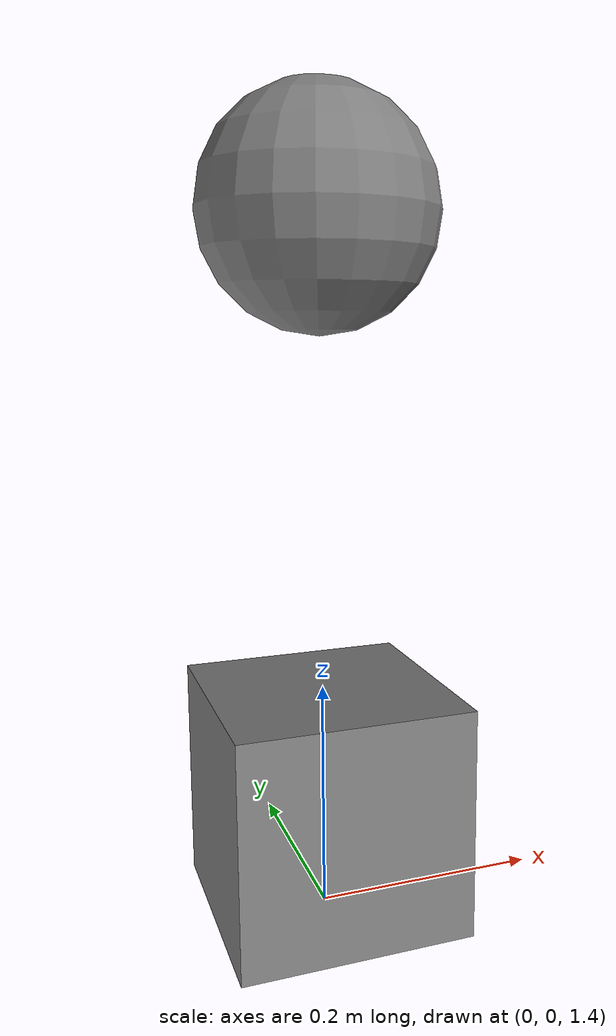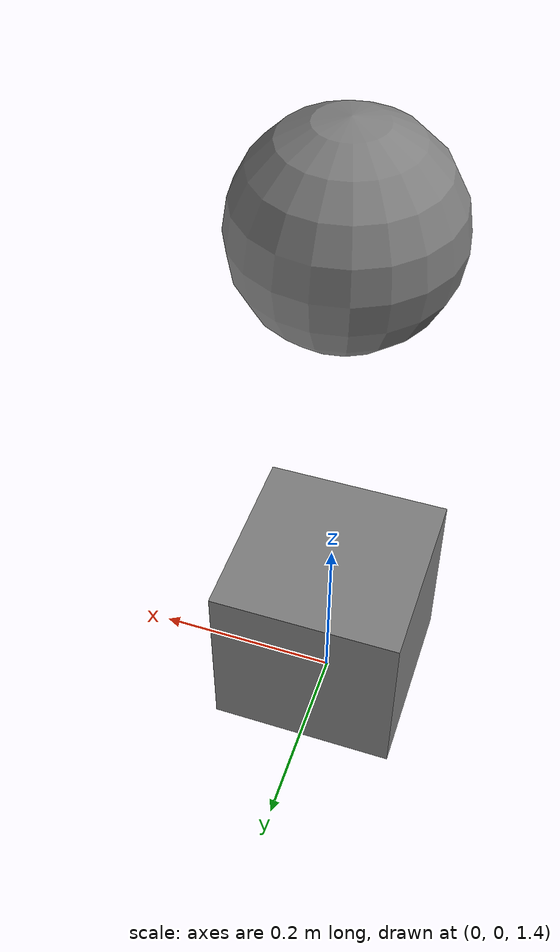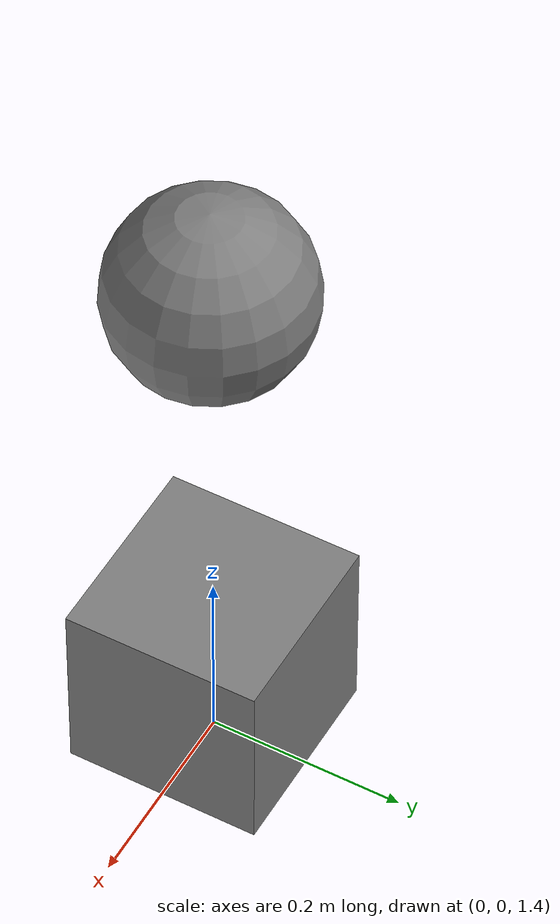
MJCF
<mujoco model="contactfilter">
    <option timestep="0.01" integrator="RK4" gravity="0 0 -0.81">
        <flag gravity="enable"/>
    </option>
    <visual>
        <rgba haze="0.5 0.5 0.5 1"/>
        <global offwidth="1920" offheight="1080" elevation="-20" azimuth="120"/>
    </visual>
    <asset>
        <texture type="skybox" builtin="gradient" rgb1="0.4 0.6 0.8" rgb2="0 0 0" width="32" height="512"/>
        <texture name="grid" type="2d" builtin="checker" rgb1="0.2 0.3 0.4" rgb2="0.1 0.2 0.3" width="512" height="512"/>
        <material name="grid" texture="grid" texrepeat="1 1" texuniform="true" reflectance="0.2"/>
    </asset>

    <worldbody>
        <geom name="floor" size="0 0 0.01" type="plane" material="grid"/>
        <light name="floorlight" mode="fixed" pos="0 0 50" dir="0 0 -1" diffuse="0.8 0.8 0.8" specular="0.3 0.3 0.3"/>
        <body name="random1" pos="0 0 1.5">
            <freejoint/>
            <geom name="geomA" type="box" size="0.1 0.1 0.1" contype="1" conaffinity="6" />
            <camera name="fixed" pos="0 -.6 .3" xyaxes="1 0 0 0 1 2"/>
            <camera name="track" pos="0 -.6 .3" xyaxes="1 0 0 0 1 2" mode="track"/>
        </body>
        <body name="random2" pos="0 0 2">
            <freejoint/>
            <geom name="geomB" type="sphere" size="0.1" contype="6" conaffinity="1" />
        </body>
    </worldbody>
</mujoco>
